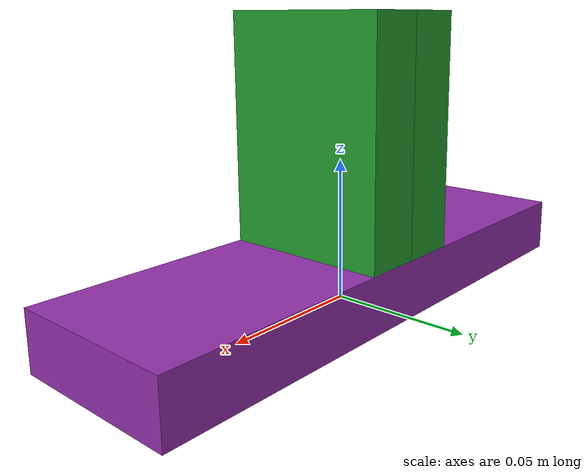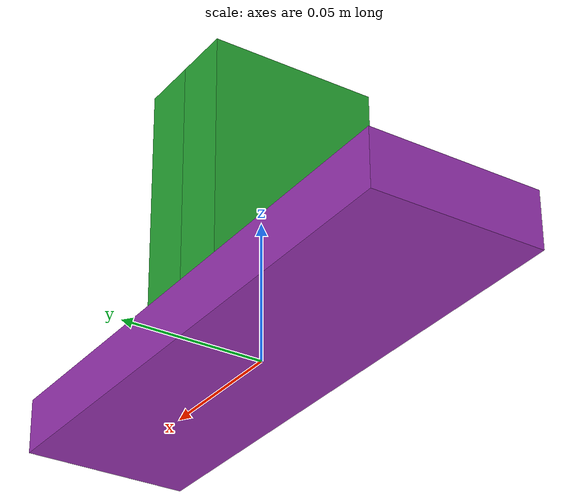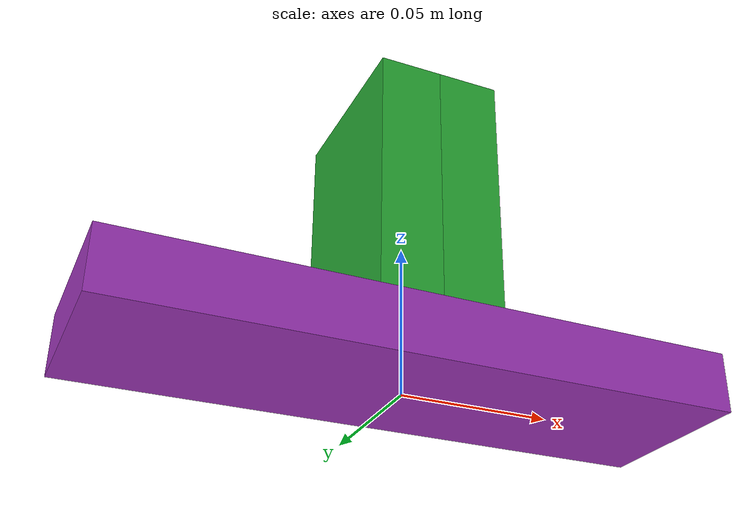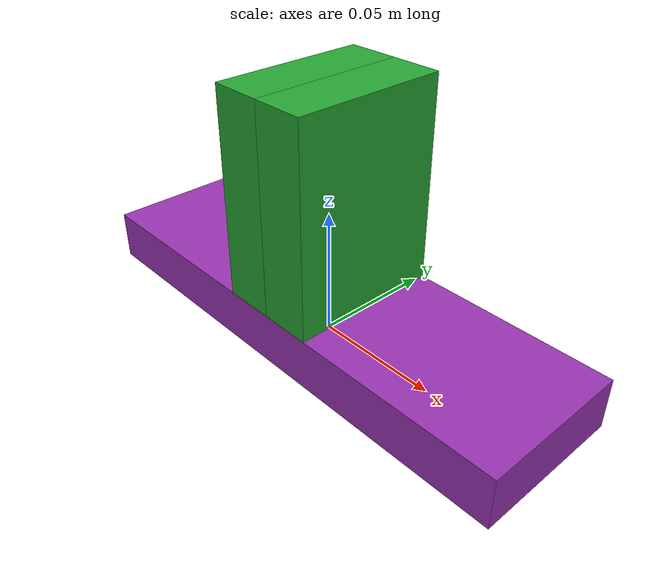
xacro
<?xml version="1.0"?>
<robot name="gripper" xmlns:xacro="http://www.ros.org/wiki/xacro">

    <!-- ========== 底座 ========== -->
    <link name="gripper_base_link">
        <visual>
            <geometry>
                <box size="0.2 0.06 0.02"/>
            </geometry>
            <origin xyz="0 0 0.01" rpy="0 0 0"/>
            <material name="purple"/>
        </visual>
        <collision>
            <geometry>
                <box size="0.2 0.06 0.02"/>
            </geometry>
            <origin xyz="0 0 0.01" rpy="0 0 0"/>
        </collision>
    </link>

    <!-- ========== 左手指 ========== -->
    <link name="left_finger_link">
        <visual>
            <geometry>
                <box size="0.02 0.06 0.08"/>
            </geometry>
            <origin xyz="0 0 0.04" rpy="0 0 0"/>
            <material name="green"/>
        </visual>
        <collision>
            <geometry>
                <box size="0.02 0.06 0.08"/>
            </geometry>
            <origin xyz="0 0 0.04" rpy="0 0 0"/>
        </collision>
    </link>

    <!-- ========== 右手指 ========== -->
    <link name="right_finger_link">
        <visual>
            <geometry>
                <box size="0.02 0.06 0.08"/>
            </geometry>
            <origin xyz="0 0 0.04" rpy="0 0 0"/>  <!-- -0.005（半宽） -->
            <material name="green"/>
        </visual>
        <collision>
            <geometry>
                <box size="0.02 0.06 0.08"/>
            </geometry>
            <origin xyz="0 0 0.04" rpy="0 0 0"/>
        </collision>
    </link>

    <!-- ========== 左关节（沿X正方向张开） ========== -->
    <joint name="left_finger_joint" type="prismatic">
        <parent link="gripper_base_link"/>
        <child link="left_finger_link"/>
        <origin xyz="0.01 0 0.02" rpy="0 0 0"/>
        <axis xyz="1 0 0"/>
        <limit velocity="0.5" effort="100" lower="0" upper="0.06"/>
    </joint>

    <!-- ========== 右关节（沿X负方向张开，镜像对称） ========== -->
    <joint name="right_finger_joint" type="prismatic">
        <parent link="gripper_base_link"/>
        <child link="right_finger_link"/>
        <origin xyz="-0.01 0 0.02" rpy="0 0 0"/>
        <axis xyz="-1 0 0"/>
        <limit velocity="0.5" effort="100" lower="0" upper="0.06"/>
        <mimic joint="left_finger_joint" multiplier="1" offset="0"/>
    </joint>

</robot>
